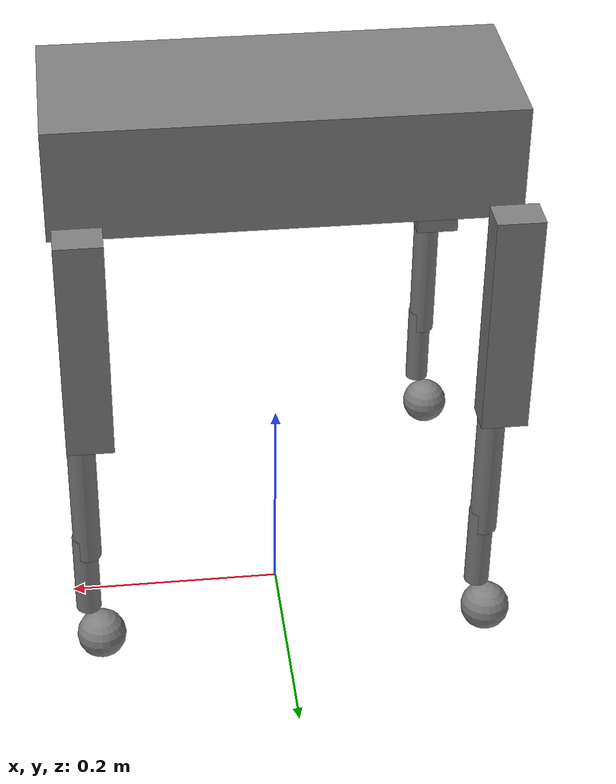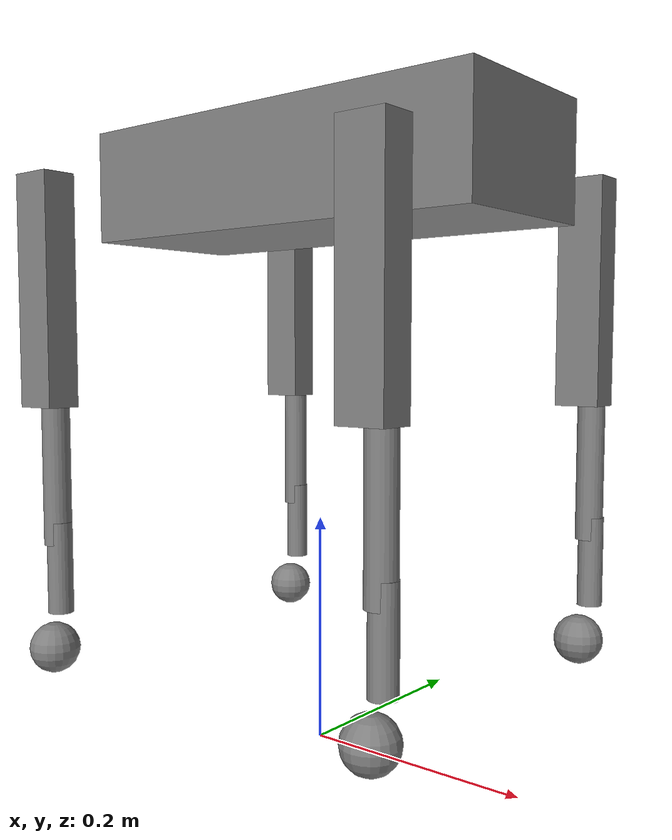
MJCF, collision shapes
<mujoco model="d1">
  <compiler angle="radian" meshdir="assets" autolimits="true" />

  <option cone="elliptic" impratio="100" />

  <default>
    <default class="d1">
      <geom friction="0.4" margin="0.001" condim="3" contype="1" conaffinity="0"/>
      <joint axis="0 1 0" damping="0.1" armature="0.01" frictionloss="0.2"/>
      <motor ctrlrange="-33.5 33.5"/>
      <default class="abad">
        <joint axis="1 0 0" range="-0.4887 0.4887"/>
      </default>
      <default class="hip">
        <joint range="-1.1519 2.967"/>
      </default>
      <default class="knee">
        <joint range="-2.723 -0.602"/>
        <motor ctrlrange="-45.43 45.43"/>
      </default>
      <default class="visual">
        <geom type="mesh" contype="0" conaffinity="0" group="2"/>
      </default>
      <default class="collision">
        <geom group="3" contype="1" conaffinity="0"/>
        <default class="foot">
          <geom size="0.022" pos="0 0 -0.21366" priority="1" condim="6"
            friction="0.4 0.02 0.01" contype="1" conaffinity="1"/>
        </default>
      </default>
    </default>
  </default>

  <asset>
    <material name="metal" rgba=".9 .95 .95 1" />
    <material name="black" rgba="0 0 0 1" />
    <material name="white" rgba="1 1 1 1" />
    <material name="gray" rgba="0.75294 0.75294 0.75294 1" />

    <mesh file="BASE_LINK.STL" />
    <mesh file="FL_ABAD_LINK.STL" />
    <mesh file="FL_HIP_LINK.STL" />
    <mesh file="FL_KNEE_LINK.STL" />
    <mesh file="FL_FOOT_LINK.STL" />
    <mesh file="FR_ABAD_LINK.STL" />
    <mesh file="FR_HIP_LINK.STL" />
    <mesh file="FR_KNEE_LINK.STL" />
    <mesh file="FR_FOOT_LINK.STL" />
    <mesh file="RL_ABAD_LINK.STL" />
    <mesh file="RL_HIP_LINK.STL" />
    <mesh file="RL_KNEE_LINK.STL" />
    <mesh file="RL_FOOT_LINK.STL" />
    <mesh file="RR_ABAD_LINK.STL" />
    <mesh file="RR_HIP_LINK.STL" />
    <mesh file="RR_KNEE_LINK.STL" />
    <mesh file="RR_FOOT_LINK.STL" />
  </asset>

  <worldbody>
    <body name="base_link" pos="0 0 0.5" childclass="d1">
      <inertial pos="0.0054 0 0.0061" mass="6.268"
        diaginertia="0.0274 0.085 0.0992" />
      <freejoint />
      <geom mesh="BASE_LINK" material="gray" class="visual" />
      <geom size="0.2 0.08 0.05" type="box" class="collision" />
      <site name="imu" pos="0 0 0" />

      <!-- Front Left Leg -->
      <body name="FL_ABAD" pos="0.17449 0.062 0">
        <inertial pos="-0.027 -0.0155 0" mass="0.454"
          diaginertia="0.000251 0.000487 0.000541" />
        <joint name="FL_ABAD_JOINT" class="abad" />
        <geom mesh="FL_ABAD_LINK" material="gray" class="visual" />
        <geom size="0.04 0.03" pos="-0.02 -0.04 0" type="cylinder" quat="1 1 0 0" class="collision" />

        <body name="FL_HIP" pos="0 0.097412 0">
          <inertial pos="-0.003 -0.043 -0.022" mass="1.502"
            diaginertia="0.00695 0.00476 0.00326" />
          <joint name="FL_HIP_JOINT" class="hip" />
          <geom mesh="FL_HIP_LINK" material="gray" class="visual" />
          <geom size="0.1 0.015 0.02" pos="0 0 -0.1" type="box" quat="0.707 0 0.707 0" class="collision" />

          <body name="FL_KNEE" pos="0 0 -0.2">
            <inertial pos="0.0077 0 -0.092" mass="0.207"
              diaginertia="0.00159 0.00162 0.00005" />
            <joint name="FL_KNEE_JOINT" class="knee" />
            <geom mesh="FL_KNEE_LINK" material="gray" class="visual" />
            <geom size="0.012 0.06" pos="0.008 0 -0.06" type="cylinder" class="collision" />
            <geom size="0.011 0.04" pos="0.01 0 -0.14" type="cylinder" class="collision" />
            <geom mesh="FL_FOOT_LINK" material="gray" class="visual" pos="0 0 -0.21366" />
            <geom name="FL" class="foot" />
            <body name="FL_FOOT" pos="0 0 -0.21366" />
          </body>
        </body>
      </body>

      <!-- Front Right Leg -->
      <body name="FR_ABAD" pos="0.17449 -0.062 0">
        <inertial pos="-0.027 0.0155 0" mass="0.454"
          diaginertia="0.000251 0.000487 0.000541" />
        <joint name="FR_ABAD_JOINT" class="abad" />
        <geom mesh="FR_ABAD_LINK" material="gray" class="visual" />
        <geom size="0.04 0.03" pos="-0.02 0.04 0" type="cylinder" quat="1 1 0 0" class="collision" />

        <body name="FR_HIP" pos="0 -0.097399 0">
          <inertial pos="-0.003 0.043 -0.022" mass="1.508"
            diaginertia="0.00715 0.00496 0.00327" />
          <joint name="FR_HIP_JOINT" class="hip" />
          <geom mesh="FR_HIP_LINK" material="gray" class="visual" />
          <geom size="0.1 0.015 0.02" pos="0 0 -0.1" type="box" quat="0.707 0 0.707 0" class="collision" />

          <body name="FR_KNEE" pos="0 0 -0.2">
            <inertial pos="0.0077 0 -0.092" mass="0.207"
              diaginertia="0.00159 0.00162 0.00005" />
            <joint name="FR_KNEE_JOINT" class="knee" />
            <geom mesh="FR_KNEE_LINK" material="gray" class="visual" />
            <geom size="0.012 0.06" pos="0.008 0 -0.06" type="cylinder" class="collision" />
            <geom size="0.011 0.04" pos="0.01 0 -0.14" type="cylinder" class="collision" />
            <geom mesh="FR_FOOT_LINK" material="gray" class="visual" pos="0 0 -0.21366" />
            <geom name="FR" class="foot" />
            <body name="FR_FOOT" pos="0 0 -0.21366" />
          </body>
        </body>
      </body>

      <!-- Rear Left Leg -->
      <body name="RL_ABAD" pos="-0.17449 0.062 0">
        <inertial pos="0.027 -0.0155 0" mass="0.454"
          diaginertia="0.000251 0.000487 0.000541" />
        <joint name="RL_ABAD_JOINT" class="abad" />
        <geom mesh="RL_ABAD_LINK" material="gray" class="visual" />
        <geom size="0.04 0.03" pos="0.02 -0.04 0" type="cylinder" quat="1 1 0 0" class="collision" />

        <body name="RL_HIP" pos="0 0.097412 0">
          <inertial pos="-0.003 -0.043 -0.022" mass="1.502"
            diaginertia="0.00695 0.00476 0.00326" />
          <joint name="RL_HIP_JOINT" class="hip" />
          <geom mesh="RL_HIP_LINK" material="gray" class="visual" />
          <geom size="0.1 0.015 0.02" pos="0 0 -0.1" type="box" quat="0.707 0 0.707 0" class="collision" />

          <body name="RL_KNEE" pos="0 0 -0.2">
            <inertial pos="0.0077 0 -0.092" mass="0.207"
              diaginertia="0.00159 0.00162 0.00005" />
            <joint name="RL_KNEE_JOINT" class="knee" />
            <geom mesh="RL_KNEE_LINK" material="gray" class="visual" />
            <geom size="0.012 0.06" pos="0.008 0 -0.06" type="cylinder" class="collision" />
            <geom size="0.011 0.04" pos="0.01 0 -0.14" type="cylinder" class="collision" />
            <geom mesh="RL_FOOT_LINK" material="gray" class="visual" pos="0 0 -0.21366" />
            <geom name="RL" class="foot" />
            <body name="RL_FOOT" pos="0 0 -0.21366" />
          </body>
        </body>
      </body>

      <!-- Rear Right Leg -->
      <body name="RR_ABAD" pos="-0.17449 -0.062 0">
        <inertial pos="0.027 0.0155 0" mass="0.454"
          diaginertia="0.000251 0.000487 0.000541" />
        <joint name="RR_ABAD_JOINT" class="abad" />
        <geom mesh="RR_ABAD_LINK" material="gray" class="visual" />
        <geom size="0.04 0.03" pos="0.02 0.04 0" type="cylinder" quat="1 1 0 0" class="collision" />

        <body name="RR_HIP" pos="0 -0.0974 0">
          <inertial pos="-0.003 0.043 -0.022" mass="1.508"
            diaginertia="0.00715 0.00496 0.00327" />
          <joint name="RR_HIP_JOINT" class="hip" />
          <geom mesh="RR_HIP_LINK" material="gray" class="visual" />
          <geom size="0.1 0.015 0.02" pos="0 0 -0.1" type="box" quat="0.707 0 0.707 0" class="collision" />

          <body name="RR_KNEE" pos="0 0 -0.2">
            <inertial pos="0.0077 0 -0.092" mass="0.207"
              diaginertia="0.00159 0.00162 0.00005" />
            <joint name="RR_KNEE_JOINT" class="knee" />
            <geom mesh="RR_KNEE_LINK" material="gray" class="visual" />
            <geom size="0.012 0.06" pos="0.008 0 -0.06" type="cylinder" class="collision" />
            <geom size="0.011 0.04" pos="0.01 0 -0.14" type="cylinder" class="collision" />
            <geom mesh="RR_FOOT_LINK" material="gray" class="visual" pos="0 0 -0.21366" />
            <geom name="RR" class="foot" />
            <body name="RR_FOOT" pos="0 0 -0.21366" />
          </body>
        </body>
      </body>
    </body>
  </worldbody>

  <actuator>
    <motor class="abad" name="FR_abad" joint="FR_ABAD_JOINT" />
    <motor class="hip" name="FR_hip" joint="FR_HIP_JOINT" />
    <motor class="knee" name="FR_knee" joint="FR_KNEE_JOINT" />
    <motor class="abad" name="FL_abad" joint="FL_ABAD_JOINT" />
    <motor class="hip" name="FL_hip" joint="FL_HIP_JOINT" />
    <motor class="knee" name="FL_knee" joint="FL_KNEE_JOINT" />
    <motor class="abad" name="RR_abad" joint="RR_ABAD_JOINT" />
    <motor class="hip" name="RR_hip" joint="RR_HIP_JOINT" />
    <motor class="knee" name="RR_knee" joint="RR_KNEE_JOINT" />
    <motor class="abad" name="RL_abad" joint="RL_ABAD_JOINT" />
    <motor class="hip" name="RL_hip" joint="RL_HIP_JOINT" />
    <motor class="knee" name="RL_knee" joint="RL_KNEE_JOINT" />
  </actuator>

  <sensor>
    <jointpos name="FR_abad_pos" joint="FR_ABAD_JOINT" />
    <jointpos name="FR_hip_pos" joint="FR_HIP_JOINT" />
    <jointpos name="FR_knee_pos" joint="FR_KNEE_JOINT" />
    <jointpos name="FL_abad_pos" joint="FL_ABAD_JOINT" />
    <jointpos name="FL_hip_pos" joint="FL_HIP_JOINT" />
    <jointpos name="FL_knee_pos" joint="FL_KNEE_JOINT" />
    <jointpos name="RR_abad_pos" joint="RR_ABAD_JOINT" />
    <jointpos name="RR_hip_pos" joint="RR_HIP_JOINT" />
    <jointpos name="RR_knee_pos" joint="RR_KNEE_JOINT" />
    <jointpos name="RL_abad_pos" joint="RL_ABAD_JOINT" />
    <jointpos name="RL_hip_pos" joint="RL_HIP_JOINT" />
    <jointpos name="RL_knee_pos" joint="RL_KNEE_JOINT" />

    <jointvel name="FR_abad_vel" joint="FR_ABAD_JOINT" />
    <jointvel name="FR_hip_vel" joint="FR_HIP_JOINT" />
    <jointvel name="FR_knee_vel" joint="FR_KNEE_JOINT" />
    <jointvel name="FL_abad_vel" joint="FL_ABAD_JOINT" />
    <jointvel name="FL_hip_vel" joint="FL_HIP_JOINT" />
    <jointvel name="FL_knee_vel" joint="FL_KNEE_JOINT" />
    <jointvel name="RR_abad_vel" joint="RR_ABAD_JOINT" />
    <jointvel name="RR_hip_vel" joint="RR_HIP_JOINT" />
    <jointvel name="RR_knee_vel" joint="RR_KNEE_JOINT" />
    <jointvel name="RL_abad_vel" joint="RL_ABAD_JOINT" />
    <jointvel name="RL_hip_vel" joint="RL_HIP_JOINT" />
    <jointvel name="RL_knee_vel" joint="RL_KNEE_JOINT" />

    <jointactuatorfrc name="FR_abad_torque" joint="FR_ABAD_JOINT" noise="0.01" />
    <jointactuatorfrc name="FR_hip_torque" joint="FR_HIP_JOINT" noise="0.01" />
    <jointactuatorfrc name="FR_knee_torque" joint="FR_KNEE_JOINT" noise="0.01" />
    <jointactuatorfrc name="FL_abad_torque" joint="FL_ABAD_JOINT" noise="0.01" />
    <jointactuatorfrc name="FL_hip_torque" joint="FL_HIP_JOINT" noise="0.01" />
    <jointactuatorfrc name="FL_knee_torque" joint="FL_KNEE_JOINT" noise="0.01" />
    <jointactuatorfrc name="RR_abad_torque" joint="RR_ABAD_JOINT" noise="0.01" />
    <jointactuatorfrc name="RR_hip_torque" joint="RR_HIP_JOINT" noise="0.01" />
    <jointactuatorfrc name="RR_knee_torque" joint="RR_KNEE_JOINT" noise="0.01" />
    <jointactuatorfrc name="RL_abad_torque" joint="RL_ABAD_JOINT" noise="0.01" />
    <jointactuatorfrc name="RL_hip_torque" joint="RL_HIP_JOINT" noise="0.01" />
    <jointactuatorfrc name="RL_knee_torque" joint="RL_KNEE_JOINT" noise="0.01" />

    <framequat name="imu_quat" objtype="site" objname="imu" />
    <gyro name="imu_gyro" site="imu" />
    <accelerometer name="imu_acc" site="imu" />

    <framepos name="frame_pos" objtype="site" objname="imu" />
    <framelinvel name="frame_vel" objtype="site" objname="imu" />
  </sensor>

  <keyframe>
    <key name="home" qpos="0 0 0.5 1 0 0 0 0 0.8 -1.5 0 0.8 -1.5 0 0.8 -1.5 0 0.8 -1.5"
      ctrl="0 0.8 -1.5 0 0.8 -1.5 0 0.8 -1.5 0 0.8 -1.5" />
  </keyframe>
</mujoco>
